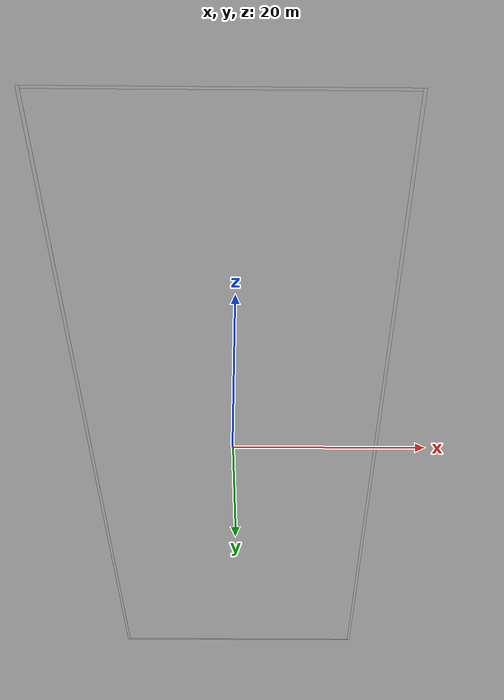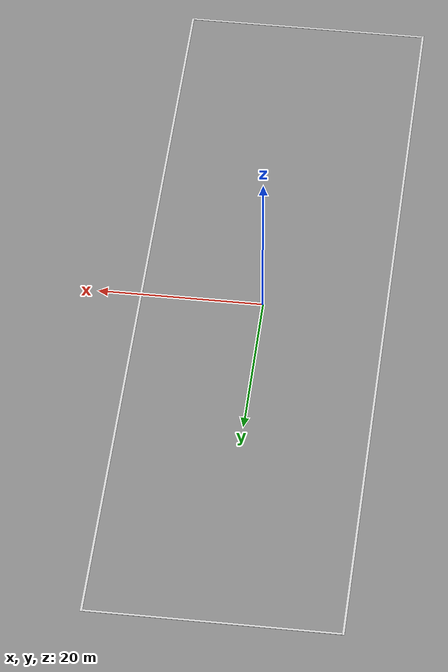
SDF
<?xml version="1.0" ?>
<sdf version="1.9">
  <model name="competition_boundary">
    <static>true</static>
    <link name="link">

      <!-- Dogu ve bati raylari: X = +/-14.85, dis kenar tam +/-15.00 -->
      <visual name="rail_east">
        <pose>14.85 0 0.01 0 0 0</pose>
        <geometry><box><size>0.30 100.00 0.02</size></box></geometry>
        <material>
          <ambient>0.85 0.85 0.85 1</ambient>
          <diffuse>0.85 0.85 0.85 1</diffuse>
          <specular>0 0 0 1</specular>
        </material>
      </visual>

      <visual name="rail_west">
        <pose>-14.85 0 0.01 0 0 0</pose>
        <geometry><box><size>0.30 100.00 0.02</size></box></geometry>
        <material>
          <ambient>0.85 0.85 0.85 1</ambient>
          <diffuse>0.85 0.85 0.85 1</diffuse>
          <specular>0 0 0 1</specular>
        </material>
      </visual>

      <!-- Kuzey ve guney raylari: Y = +/-49.85, uzunluk 29.40 = 30.00 eksi
           2 x 0.30, boylece koseler yan raylarla cakismaz -->
      <visual name="rail_north">
        <pose>0 49.85 0.01 0 0 0</pose>
        <geometry><box><size>29.40 0.30 0.02</size></box></geometry>
        <material>
          <ambient>0.85 0.85 0.85 1</ambient>
          <diffuse>0.85 0.85 0.85 1</diffuse>
          <specular>0 0 0 1</specular>
        </material>
      </visual>

      <visual name="rail_south">
        <pose>0 -49.85 0.01 0 0 0</pose>
        <geometry><box><size>29.40 0.30 0.02</size></box></geometry>
        <material>
          <ambient>0.85 0.85 0.85 1</ambient>
          <diffuse>0.85 0.85 0.85 1</diffuse>
          <specular>0 0 0 1</specular>
        </material>
      </visual>

    </link>
  </model>
</sdf>
